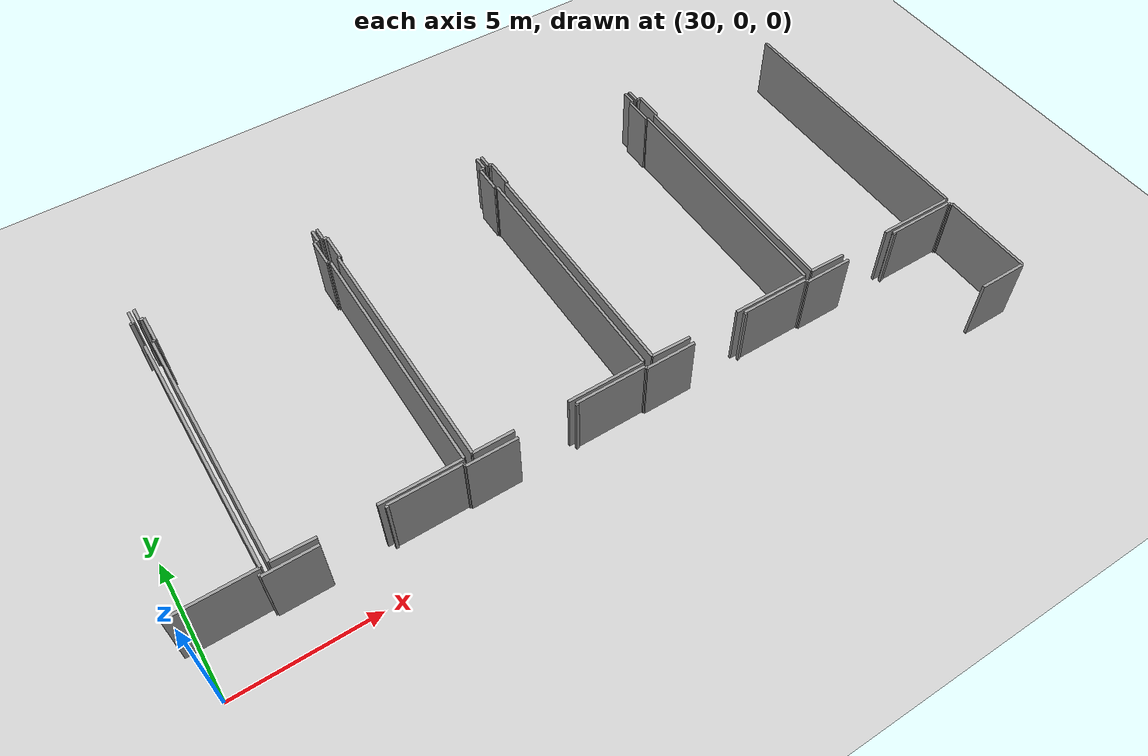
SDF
<sdf version="1.6">
 <world name="default">
  <model name="ground_plane">
   <static>1</static>
   <link name="link">
    <collision name="collision">
     <geometry><plane><normal>0 0 1</normal><size>100 100</size></plane></geometry>
     <surface><friction><ode><mu>100</mu><mu2>50</mu2></ode></friction></surface>
    </collision>
    <visual name="visual">
     <cast_shadows>0</cast_shadows>
     <geometry><plane><normal>0 0 1</normal><size>100 100</size></plane></geometry>
     <material>
      <script><uri>file://media/materials/scripts/gazebo.material</uri><name>Gazebo/Grey</name></script>
     </material>
    </visual>
   </link>
  </model>
  <model name="0510040942_A-40">
   <static>1</static>
   <link name="Wall_314">
    <collision name="Wall_314_Collision">
     <geometry><box><size>9.08522273114 0.1 2.5</size></box></geometry>
     <pose>4.54261136557 0 1.25 0 0 0</pose>
    </collision>
    <visual name="Wall_314_Visual">
     <pose>4.54261136557 0 1.25 0 0 0</pose>
     <geometry><box><size>9.08522273114 0.1 2.5</size></box></geometry>
     <material>
      <script><uri>file://media/materials/scripts/gazebo.material</uri><name>Gazebo/Grey</name></script>
      <ambient>1 1 1 1</ambient>
     </material>
    </visual>
    <pose>110.847659769 -10.6883032848 0 0 0 1.57079632679</pose>
   </link>
   <link name="Wall_315">
    <collision name="Wall_315_Collision">
     <geometry><box><size>0.0864026796249 0.1 2.5</size></box></geometry>
     <pose>0.0432013398125 0 1.25 0 0 0</pose>
    </collision>
    <visual name="Wall_315_Visual">
     <pose>0.0432013398125 0 1.25 0 0 0</pose>
     <geometry><box><size>0.0864026796249 0.1 2.5</size></box></geometry>
     <material>
      <script><uri>file://media/materials/scripts/gazebo.material</uri><name>Gazebo/Grey</name></script>
      <ambient>1 1 1 1</ambient>
     </material>
    </visual>
    <pose>110.847659769 -1.60308055369 0 0 0 0.0</pose>
   </link>
   <link name="Wall_316">
    <collision name="Wall_316_Collision">
     <geometry><box><size>1.06487179162 0.1 2.5</size></box></geometry>
     <pose>0.532435895809 0 1.25 0 0 0</pose>
    </collision>
    <visual name="Wall_316_Visual">
     <pose>0.532435895809 0 1.25 0 0 0</pose>
     <geometry><box><size>1.06487179162 0.1 2.5</size></box></geometry>
     <material>
      <script><uri>file://media/materials/scripts/gazebo.material</uri><name>Gazebo/Grey</name></script>
      <ambient>1 1 1 1</ambient>
     </material>
    </visual>
    <pose>110.934062448 -1.60308055369 0 0 0 1.57079632679</pose>
   </link>
   <link name="Wall_317">
    <collision name="Wall_317_Collision">
     <geometry><box><size>0.163162769453 0.1 2.5</size></box></geometry>
     <pose>0.0815813847266 0 1.25 0 0 0</pose>
    </collision>
    <visual name="Wall_317_Visual">
     <pose>0.0815813847266 0 1.25 0 0 0</pose>
     <geometry><box><size>0.163162769453 0.1 2.5</size></box></geometry>
     <material>
      <script><uri>file://media/materials/scripts/gazebo.material</uri><name>Gazebo/Grey</name></script>
      <ambient>1 1 1 1</ambient>
     </material>
    </visual>
    <pose>110.934062448 -0.538208762069 0 0 0 3.14159265359</pose>
   </link>
   <link name="Wall_318">
    <collision name="Wall_318_Collision">
     <geometry><box><size>0.518035449205 0.1 2.5</size></box></geometry>
     <pose>0.259017724603 0 1.25 0 0 0</pose>
    </collision>
    <visual name="Wall_318_Visual">
     <pose>0.259017724603 0 1.25 0 0 0</pose>
     <geometry><box><size>0.518035449205 0.1 2.5</size></box></geometry>
     <material>
      <script><uri>file://media/materials/scripts/gazebo.material</uri><name>Gazebo/Grey</name></script>
      <ambient>1 1 1 1</ambient>
     </material>
    </visual>
    <pose>110.770899679 -0.538208762069 0 0 0 1.57079632679</pose>
   </link>
   <link name="Wall_319">
    <collision name="Wall_319_Collision">
     <geometry><box><size>10.1485720086 0.1 2.5</size></box></geometry>
     <pose>5.07428600429 0 1.25 0 0 0</pose>
    </collision>
    <visual name="Wall_319_Visual">
     <pose>5.07428600429 0 1.25 0 0 0</pose>
     <geometry><box><size>10.1485720086 0.1 2.5</size></box></geometry>
     <material>
      <script><uri>file://media/materials/scripts/gazebo.material</uri><name>Gazebo/Grey</name></script>
      <ambient>1 1 1 1</ambient>
     </material>
    </visual>
    <pose>116.951926615 -0.56967405509 0 0 0 -1.57079632679</pose>
   </link>
   <link name="Wall_320">
    <collision name="Wall_320_Collision">
     <geometry><box><size>2.85090779908 0.1 2.5</size></box></geometry>
     <pose>1.42545389954 0 1.25 0 0 0</pose>
    </collision>
    <visual name="Wall_320_Visual">
     <pose>1.42545389954 0 1.25 0 0 0</pose>
     <geometry><box><size>2.85090779908 0.1 2.5</size></box></geometry>
     <material>
      <script><uri>file://media/materials/scripts/gazebo.material</uri><name>Gazebo/Grey</name></script>
      <ambient>1 1 1 1</ambient>
     </material>
    </visual>
    <pose>116.951926615 -10.7182460637 0 0 0 3.14159265359</pose>
   </link>
   <link name="Wall_321">
    <collision name="Wall_321_Collision">
     <geometry><box><size>1.34547449775 0.1 2.5</size></box></geometry>
     <pose>0.672737248875 0 1.25 0 0 0</pose>
    </collision>
    <visual name="Wall_321_Visual">
     <pose>0.672737248875 0 1.25 0 0 0</pose>
     <geometry><box><size>1.34547449775 0.1 2.5</size></box></geometry>
     <material>
      <script><uri>file://media/materials/scripts/gazebo.material</uri><name>Gazebo/Grey</name></script>
      <ambient>1 1 1 1</ambient>
     </material>
    </visual>
    <pose>112.192801045 -10.7182460637 0 0 0 3.11933637819</pose>
   </link>
   <link name="Wall_322">
    <collision name="Wall_322_Collision">
     <geometry><box><size>9.08281208369 0.1 2.5</size></box></geometry>
     <pose>4.54140604184 0 1.25 0 0 0</pose>
    </collision>
    <visual name="Wall_322_Visual">
     <pose>4.54140604184 0 1.25 0 0 0</pose>
     <geometry><box><size>9.08281208369 0.1 2.5</size></box></geometry>
     <material>
      <script><uri>file://media/materials/scripts/gazebo.material</uri><name>Gazebo/Grey</name></script>
      <ambient>1 1 1 1</ambient>
     </material>
    </visual>
    <pose>104.36834693 -10.6858926374 0 0 0 1.57079632679</pose>
   </link>
   <link name="Wall_323">
    <collision name="Wall_323_Collision">
     <geometry><box><size>0.0611543194996 0.1 2.5</size></box></geometry>
     <pose>0.0305771597498 0 1.25 0 0 0</pose>
    </collision>
    <visual name="Wall_323_Visual">
     <pose>0.0305771597498 0 1.25 0 0 0</pose>
     <geometry><box><size>0.0611543194996 0.1 2.5</size></box></geometry>
     <material>
      <script><uri>file://media/materials/scripts/gazebo.material</uri><name>Gazebo/Grey</name></script>
      <ambient>1 1 1 1</ambient>
     </material>
    </visual>
    <pose>104.36834693 -1.60308055369 0 0 0 0.0</pose>
   </link>
   <link name="Wall_324">
    <collision name="Wall_324_Collision">
     <geometry><box><size>1.07451438142 0.1 2.5</size></box></geometry>
     <pose>0.537257190708 0 1.25 0 0 0</pose>
    </collision>
    <visual name="Wall_324_Visual">
     <pose>0.537257190708 0 1.25 0 0 0</pose>
     <geometry><box><size>1.07451438142 0.1 2.5</size></box></geometry>
     <material>
      <script><uri>file://media/materials/scripts/gazebo.material</uri><name>Gazebo/Grey</name></script>
      <ambient>1 1 1 1</ambient>
     </material>
    </visual>
    <pose>104.42950125 -1.60308055369 0 0 0 1.57079632679</pose>
   </link>
   <link name="Wall_325">
    <collision name="Wall_325_Collision">
     <geometry><box><size>0.134235000063 0.1 2.5</size></box></geometry>
     <pose>0.0671175000317 0 1.25 0 0 0</pose>
    </collision>
    <visual name="Wall_325_Visual">
     <pose>0.0671175000317 0 1.25 0 0 0</pose>
     <geometry><box><size>0.134235000063 0.1 2.5</size></box></geometry>
     <material>
      <script><uri>file://media/materials/scripts/gazebo.material</uri><name>Gazebo/Grey</name></script>
      <ambient>1 1 1 1</ambient>
     </material>
    </visual>
    <pose>104.42950125 -0.528566172272 0 0 0 3.14159265359</pose>
   </link>
   <link name="Wall_326">
    <collision name="Wall_326_Collision">
     <geometry><box><size>0.518035449205 0.1 2.5</size></box></geometry>
     <pose>0.259017724603 0 1.25 0 0 0</pose>
    </collision>
    <visual name="Wall_326_Visual">
     <pose>0.259017724603 0 1.25 0 0 0</pose>
     <geometry><box><size>0.518035449205 0.1 2.5</size></box></geometry>
     <material>
      <script><uri>file://media/materials/scripts/gazebo.material</uri><name>Gazebo/Grey</name></script>
      <ambient>1 1 1 1</ambient>
     </material>
    </visual>
    <pose>104.29526625 -0.528566172272 0 0 0 1.57079632679</pose>
   </link>
   <link name="Wall_327">
    <collision name="Wall_327_Collision">
     <geometry><box><size>0.525648020097 0.1 2.5</size></box></geometry>
     <pose>0.262824010049 0 1.25 0 0 0</pose>
    </collision>
    <visual name="Wall_327_Visual">
     <pose>0.262824010049 0 1.25 0 0 0</pose>
     <geometry><box><size>0.525648020097 0.1 2.5</size></box></geometry>
     <material>
      <script><uri>file://media/materials/scripts/gazebo.material</uri><name>Gazebo/Grey</name></script>
      <ambient>1 1 1 1</ambient>
     </material>
    </visual>
    <pose>110.596318053 -0.0105307230674 0 0 0 -1.57079632679</pose>
   </link>
   <link name="Wall_328">
    <collision name="Wall_328_Collision">
     <geometry><box><size>0.126114924445 0.1 2.5</size></box></geometry>
     <pose>0.0630574622226 0 1.25 0 0 0</pose>
    </collision>
    <visual name="Wall_328_Visual">
     <pose>0.0630574622226 0 1.25 0 0 0</pose>
     <geometry><box><size>0.126114924445 0.1 2.5</size></box></geometry>
     <material>
      <script><uri>file://media/materials/scripts/gazebo.material</uri><name>Gazebo/Grey</name></script>
      <ambient>1 1 1 1</ambient>
     </material>
    </visual>
    <pose>110.596318053 -0.536178743165 0 0 0 3.14159265359</pose>
   </link>
   <link name="Wall_329">
    <collision name="Wall_329_Collision">
     <geometry><box><size>1.06563304871 0.1 2.5</size></box></geometry>
     <pose>0.532816524354 0 1.25 0 0 0</pose>
    </collision>
    <visual name="Wall_329_Visual">
     <pose>0.532816524354 0 1.25 0 0 0</pose>
     <geometry><box><size>1.06563304871 0.1 2.5</size></box></geometry>
     <material>
      <script><uri>file://media/materials/scripts/gazebo.material</uri><name>Gazebo/Grey</name></script>
      <ambient>1 1 1 1</ambient>
     </material>
    </visual>
    <pose>110.470203129 -0.536178743165 0 0 0 -1.57079632679</pose>
   </link>
   <link name="Wall_330">
    <collision name="Wall_330_Collision">
     <geometry><box><size>0.0548105104229 0.1 2.5</size></box></geometry>
     <pose>0.0274052552114 0 1.25 0 0 0</pose>
    </collision>
    <visual name="Wall_330_Visual">
     <pose>0.0274052552114 0 1.25 0 0 0</pose>
     <geometry><box><size>0.0548105104229 0.1 2.5</size></box></geometry>
     <material>
      <script><uri>file://media/materials/scripts/gazebo.material</uri><name>Gazebo/Grey</name></script>
      <ambient>1 1 1 1</ambient>
     </material>
    </visual>
    <pose>110.470203129 -1.60181179187 0 0 0 0.0</pose>
   </link>
   <link name="Wall_331">
    <collision name="Wall_331_Collision">
     <geometry><box><size>9.11643427179 0.1 2.5</size></box></geometry>
     <pose>4.5582171359 0 1.25 0 0 0</pose>
    </collision>
    <visual name="Wall_331_Visual">
     <pose>4.5582171359 0 1.25 0 0 0</pose>
     <geometry><box><size>9.11643427179 0.1 2.5</size></box></geometry>
     <material>
      <script><uri>file://media/materials/scripts/gazebo.material</uri><name>Gazebo/Grey</name></script>
      <ambient>1 1 1 1</ambient>
     </material>
    </visual>
    <pose>110.525013639 -1.60181179187 0 0 0 -1.57079632679</pose>
   </link>
   <link name="Wall_332">
    <collision name="Wall_332_Collision">
     <geometry><box><size>2.84392960909 0.1 2.5</size></box></geometry>
     <pose>1.42196480455 0 1.25 0 0 0</pose>
    </collision>
    <visual name="Wall_332_Visual">
     <pose>1.42196480455 0 1.25 0 0 0</pose>
     <geometry><box><size>2.84392960909 0.1 2.5</size></box></geometry>
     <material>
      <script><uri>file://media/materials/scripts/gazebo.material</uri><name>Gazebo/Grey</name></script>
      <ambient>1 1 1 1</ambient>
     </material>
    </visual>
    <pose>110.525013639 -10.7182460637 0 0 0 3.14159265359</pose>
   </link>
   <link name="Wall_333">
    <collision name="Wall_333_Collision">
     <geometry><box><size>1.43343163523 0.1 2.5</size></box></geometry>
     <pose>0.716715817613 0 1.25 0 0 0</pose>
    </collision>
    <visual name="Wall_333_Visual">
     <pose>0.716715817613 0 1.25 0 0 0</pose>
     <geometry><box><size>1.43343163523 0.1 2.5</size></box></geometry>
     <material>
      <script><uri>file://media/materials/scripts/gazebo.material</uri><name>Gazebo/Grey</name></script>
      <ambient>1 1 1 1</ambient>
     </material>
    </visual>
    <pose>105.801413401 -10.7182460637 0 0 0 3.11902012686</pose>
   </link>
   <link name="Wall_334">
    <collision name="Wall_334_Collision">
     <geometry><box><size>1.44626159331 0.1 2.5</size></box></geometry>
     <pose>0.723130796656 0 1.25 0 0 0</pose>
    </collision>
    <visual name="Wall_334_Visual">
     <pose>0.723130796656 0 1.25 0 0 0</pose>
     <geometry><box><size>1.44626159331 0.1 2.5</size></box></geometry>
     <material>
      <script><uri>file://media/materials/scripts/gazebo.material</uri><name>Gazebo/Grey</name></script>
      <ambient>1 1 1 1</ambient>
     </material>
    </visual>
    <pose>97.8512249895 -10.6992146364 0 0 0 0.0</pose>
   </link>
   <link name="Wall_335">
    <collision name="Wall_335_Collision">
     <geometry><box><size>2.8012992121 0.1 2.5</size></box></geometry>
     <pose>1.40064960605 0 1.25 0 0 0</pose>
    </collision>
    <visual name="Wall_335_Visual">
     <pose>1.40064960605 0 1.25 0 0 0</pose>
     <geometry><box><size>2.8012992121 0.1 2.5</size></box></geometry>
     <material>
      <script><uri>file://media/materials/scripts/gazebo.material</uri><name>Gazebo/Grey</name></script>
      <ambient>1 1 1 1</ambient>
     </material>
    </visual>
    <pose>101.217250086 -10.6992146364 0 0 0 0.0</pose>
   </link>
   <link name="Wall_336">
    <collision name="Wall_336_Collision">
     <geometry><box><size>9.064161285 0.1 2.5</size></box></geometry>
     <pose>4.5320806425 0 1.25 0 0 0</pose>
    </collision>
    <visual name="Wall_336_Visual">
     <pose>4.5320806425 0 1.25 0 0 0</pose>
     <geometry><box><size>9.064161285 0.1 2.5</size></box></geometry>
     <material>
      <script><uri>file://media/materials/scripts/gazebo.material</uri><name>Gazebo/Grey</name></script>
      <ambient>1 1 1 1</ambient>
     </material>
    </visual>
    <pose>104.018549298 -10.6992146364 0 0 0 1.57079632679</pose>
   </link>
   <link name="Wall_337">
    <collision name="Wall_337_Collision">
     <geometry><box><size>0.0799319943667 0.1 2.5</size></box></geometry>
     <pose>0.0399659971834 0 1.25 0 0 0</pose>
    </collision>
    <visual name="Wall_337_Visual">
     <pose>0.0399659971834 0 1.25 0 0 0</pose>
     <geometry><box><size>0.0799319943667 0.1 2.5</size></box></geometry>
     <material>
      <script><uri>file://media/materials/scripts/gazebo.material</uri><name>Gazebo/Grey</name></script>
      <ambient>1 1 1 1</ambient>
     </material>
    </visual>
    <pose>104.018549298 -1.63505335143 0 0 0 3.14159265359</pose>
   </link>
   <link name="Wall_338">
    <collision name="Wall_338_Collision">
     <geometry><box><size>1.07844754304 0.1 2.5</size></box></geometry>
     <pose>0.539223771521 0 1.25 0 0 0</pose>
    </collision>
    <visual name="Wall_338_Visual">
     <pose>0.539223771521 0 1.25 0 0 0</pose>
     <geometry><box><size>1.07844754304 0.1 2.5</size></box></geometry>
     <material>
      <script><uri>file://media/materials/scripts/gazebo.material</uri><name>Gazebo/Grey</name></script>
      <ambient>1 1 1 1</ambient>
     </material>
    </visual>
    <pose>103.938617303 -1.63505335143 0 0 0 1.57079632679</pose>
   </link>
   <link name="Wall_339">
    <collision name="Wall_339_Collision">
     <geometry><box><size>0.178387911237 0.1 2.5</size></box></geometry>
     <pose>0.0891939556187 0 1.25 0 0 0</pose>
    </collision>
    <visual name="Wall_339_Visual">
     <pose>0.0891939556187 0 1.25 0 0 0</pose>
     <geometry><box><size>0.178387911237 0.1 2.5</size></box></geometry>
     <material>
      <script><uri>file://media/materials/scripts/gazebo.material</uri><name>Gazebo/Grey</name></script>
      <ambient>1 1 1 1</ambient>
     </material>
    </visual>
    <pose>103.938617303 -0.556605808392 0 0 0 0.0</pose>
   </link>
   <link name="Wall_340">
    <collision name="Wall_340_Collision">
     <geometry><box><size>0.54328380933 0.1 2.5</size></box></geometry>
     <pose>0.271641904665 0 1.25 0 0 0</pose>
    </collision>
    <visual name="Wall_340_Visual">
     <pose>0.271641904665 0 1.25 0 0 0</pose>
     <geometry><box><size>0.54328380933 0.1 2.5</size></box></geometry>
     <material>
      <script><uri>file://media/materials/scripts/gazebo.material</uri><name>Gazebo/Grey</name></script>
      <ambient>1 1 1 1</ambient>
     </material>
    </visual>
    <pose>104.117005215 -0.556605808392 0 0 0 1.57079632679</pose>
   </link>
   <link name="Wall_341">
    <collision name="Wall_341_Collision">
     <geometry><box><size>0.52171485847 0.1 2.5</size></box></geometry>
     <pose>0.260857429235 0 1.25 0 0 0</pose>
    </collision>
    <visual name="Wall_341_Visual">
     <pose>0.260857429235 0 1.25 0 0 0</pose>
     <geometry><box><size>0.52171485847 0.1 2.5</size></box></geometry>
     <material>
      <script><uri>file://media/materials/scripts/gazebo.material</uri><name>Gazebo/Grey</name></script>
      <ambient>1 1 1 1</ambient>
     </material>
    </visual>
    <pose>97.7907050509 -0.0133219990611 0 0 0 -1.57079632679</pose>
   </link>
   <link name="Wall_342">
    <collision name="Wall_342_Collision">
     <geometry><box><size>0.137533780783 0.1 2.5</size></box></geometry>
     <pose>0.0687668903917 0 1.25 0 0 0</pose>
    </collision>
    <visual name="Wall_342_Visual">
     <pose>0.0687668903917 0 1.25 0 0 0</pose>
     <geometry><box><size>0.137533780783 0.1 2.5</size></box></geometry>
     <material>
      <script><uri>file://media/materials/scripts/gazebo.material</uri><name>Gazebo/Grey</name></script>
      <ambient>1 1 1 1</ambient>
     </material>
    </visual>
    <pose>97.7907050509 -0.535036857531 0 0 0 0.0</pose>
   </link>
   <link name="Wall_343">
    <collision name="Wall_343_Collision">
     <geometry><box><size>1.04837788802 0.1 2.5</size></box></geometry>
     <pose>0.52418894401 0 1.25 0 0 0</pose>
    </collision>
    <visual name="Wall_343_Visual">
     <pose>0.52418894401 0 1.25 0 0 0</pose>
     <geometry><box><size>1.04837788802 0.1 2.5</size></box></geometry>
     <material>
      <script><uri>file://media/materials/scripts/gazebo.material</uri><name>Gazebo/Grey</name></script>
      <ambient>1 1 1 1</ambient>
     </material>
    </visual>
    <pose>97.9282388317 -0.535036857531 0 0 0 -1.57079632679</pose>
   </link>
   <link name="Wall_344">
    <collision name="Wall_344_Collision">
     <geometry><box><size>0.0798051181851 0.1 2.5</size></box></geometry>
     <pose>0.0399025590926 0 1.25 0 0 0</pose>
    </collision>
    <visual name="Wall_344_Visual">
     <pose>0.0399025590926 0 1.25 0 0 0</pose>
     <geometry><box><size>0.0798051181851 0.1 2.5</size></box></geometry>
     <material>
      <script><uri>file://media/materials/scripts/gazebo.material</uri><name>Gazebo/Grey</name></script>
      <ambient>1 1 1 1</ambient>
     </material>
    </visual>
    <pose>97.9282388317 -1.58341474555 0 0 0 3.14159265359</pose>
   </link>
   <link name="Wall_345">
    <collision name="Wall_345_Collision">
     <geometry><box><size>9.10120913001 0.1 2.5</size></box></geometry>
     <pose>4.55060456501 0 1.25 0 0 0</pose>
    </collision>
    <visual name="Wall_345_Visual">
     <pose>4.55060456501 0 1.25 0 0 0</pose>
     <geometry><box><size>9.10120913001 0.1 2.5</size></box></geometry>
     <material>
      <script><uri>file://media/materials/scripts/gazebo.material</uri><name>Gazebo/Grey</name></script>
      <ambient>1 1 1 1</ambient>
     </material>
    </visual>
    <pose>97.8484337135 -1.58341474555 0 0 0 -1.57079632679</pose>
   </link>
   <link name="Wall_346">
    <collision name="Wall_346_Collision">
     <geometry><box><size>0.0148553533996 0.1 2.5</size></box></geometry>
     <pose>0.0074276766998 0 1.25 0 0 0</pose>
    </collision>
    <visual name="Wall_346_Visual">
     <pose>0.0074276766998 0 1.25 0 0 0</pose>
     <geometry><box><size>0.0148553533996 0.1 2.5</size></box></geometry>
     <material>
      <script><uri>file://media/materials/scripts/gazebo.material</uri><name>Gazebo/Grey</name></script>
      <ambient>1 1 1 1</ambient>
     </material>
    </visual>
    <pose>97.8484337135 -10.6846238756 0 0 0 -1.38177578051</pose>
   </link>
   <link name="Wall_347">
    <collision name="Wall_347_Collision">
     <geometry><box><size>9.10438103455 0.1 2.5</size></box></geometry>
     <pose>4.55219051727 0 1.25 0 0 0</pose>
    </collision>
    <visual name="Wall_347_Visual">
     <pose>4.55219051727 0 1.25 0 0 0</pose>
     <geometry><box><size>9.10438103455 0.1 2.5</size></box></geometry>
     <material>
      <script><uri>file://media/materials/scripts/gazebo.material</uri><name>Gazebo/Grey</name></script>
      <ambient>1 1 1 1</ambient>
     </material>
    </visual>
    <pose>91.3533882284 -10.6883032848 0 0 0 1.57079632679</pose>
   </link>
   <link name="Wall_348">
    <collision name="Wall_348_Collision">
     <geometry><box><size>0.105560983037 0.1 2.5</size></box></geometry>
     <pose>0.0527804915183 0 1.25 0 0 0</pose>
    </collision>
    <visual name="Wall_348_Visual">
     <pose>0.0527804915183 0 1.25 0 0 0</pose>
     <geometry><box><size>0.105560983037 0.1 2.5</size></box></geometry>
     <material>
      <script><uri>file://media/materials/scripts/gazebo.material</uri><name>Gazebo/Grey</name></script>
      <ambient>1 1 1 1</ambient>
     </material>
    </visual>
    <pose>91.3533882284 -1.58392225028 0 0 0 0.0</pose>
   </link>
   <link name="Wall_349">
    <collision name="Wall_349_Collision">
     <geometry><box><size>1.07451438142 0.1 2.5</size></box></geometry>
     <pose>0.537257190708 0 1.25 0 0 0</pose>
    </collision>
    <visual name="Wall_349_Visual">
     <pose>0.537257190708 0 1.25 0 0 0</pose>
     <geometry><box><size>1.07451438142 0.1 2.5</size></box></geometry>
     <material>
      <script><uri>file://media/materials/scripts/gazebo.material</uri><name>Gazebo/Grey</name></script>
      <ambient>1 1 1 1</ambient>
     </material>
    </visual>
    <pose>91.4589492115 -1.58392225028 0 0 0 1.57079632679</pose>
   </link>
   <link name="Wall_350">
    <collision name="Wall_350_Collision">
     <geometry><box><size>0.153520179657 0.1 2.5</size></box></geometry>
     <pose>0.0767600898283 0 1.25 0 0 0</pose>
    </collision>
    <visual name="Wall_350_Visual">
     <pose>0.0767600898283 0 1.25 0 0 0</pose>
     <geometry><box><size>0.153520179657 0.1 2.5</size></box></geometry>
     <material>
      <script><uri>file://media/materials/scripts/gazebo.material</uri><name>Gazebo/Grey</name></script>
      <ambient>1 1 1 1</ambient>
     </material>
    </visual>
    <pose>91.4589492115 -0.509407868861 0 0 0 3.14159265359</pose>
   </link>
   <link name="Wall_351">
    <collision name="Wall_351_Collision">
     <geometry><box><size>0.509407868861 0.1 2.5</size></box></geometry>
     <pose>0.25470393443 0 1.25 0 0 0</pose>
    </collision>
    <visual name="Wall_351_Visual">
     <pose>0.25470393443 0 1.25 0 0 0</pose>
     <geometry><box><size>0.509407868861 0.1 2.5</size></box></geometry>
     <material>
      <script><uri>file://media/materials/scripts/gazebo.material</uri><name>Gazebo/Grey</name></script>
      <ambient>1 1 1 1</ambient>
     </material>
    </visual>
    <pose>91.3054290318 -0.509407868861 0 0 0 1.57079632679</pose>
   </link>
   <link name="Wall_352">
    <collision name="Wall_352_Collision">
     <geometry><box><size>0.526155524823 0.1 2.5</size></box></geometry>
     <pose>0.263077762412 0 1.25 0 0 0</pose>
    </collision>
    <visual name="Wall_352_Visual">
     <pose>0.263077762412 0 1.25 0 0 0</pose>
     <geometry><box><size>0.526155524823 0.1 2.5</size></box></geometry>
     <material>
      <script><uri>file://media/materials/scripts/gazebo.material</uri><name>Gazebo/Grey</name></script>
      <ambient>1 1 1 1</ambient>
     </material>
    </visual>
    <pose>97.6267810244 -0.0 0 0 0 -1.57079632679</pose>
   </link>
   <link name="Wall_353">
    <collision name="Wall_353_Collision">
     <geometry><box><size>0.166842178718 0.1 2.5</size></box></geometry>
     <pose>0.0834210893589 0 1.25 0 0 0</pose>
    </collision>
    <visual name="Wall_353_Visual">
     <pose>0.0834210893589 0 1.25 0 0 0</pose>
     <geometry><box><size>0.166842178718 0.1 2.5</size></box></geometry>
     <material>
      <script><uri>file://media/materials/scripts/gazebo.material</uri><name>Gazebo/Grey</name></script>
      <ambient>1 1 1 1</ambient>
     </material>
    </visual>
    <pose>97.6267810244 -0.526155524823 0 0 0 3.14159265359</pose>
   </link>
   <link name="Wall_354">
    <collision name="Wall_354_Collision">
     <geometry><box><size>1.07096184833 0.1 2.5</size></box></geometry>
     <pose>0.535480924166 0 1.25 0 0 0</pose>
    </collision>
    <visual name="Wall_354_Visual">
     <pose>0.535480924166 0 1.25 0 0 0</pose>
     <geometry><box><size>1.07096184833 0.1 2.5</size></box></geometry>
     <material>
      <script><uri>file://media/materials/scripts/gazebo.material</uri><name>Gazebo/Grey</name></script>
      <ambient>1 1 1 1</ambient>
     </material>
    </visual>
    <pose>97.4599388457 -0.526155524823 0 0 0 -1.57079632679</pose>
   </link>
   <link name="Wall_355">
    <collision name="Wall_355_Collision">
     <geometry><box><size>0.0950302599693 0.1 2.5</size></box></geometry>
     <pose>0.0475151299846 0 1.25 0 0 0</pose>
    </collision>
    <visual name="Wall_355_Visual">
     <pose>0.0475151299846 0 1.25 0 0 0</pose>
     <geometry><box><size>0.0950302599693 0.1 2.5</size></box></geometry>
     <material>
      <script><uri>file://media/materials/scripts/gazebo.material</uri><name>Gazebo/Grey</name></script>
      <ambient>1 1 1 1</ambient>
     </material>
    </visual>
    <pose>97.4599388457 -1.59711737316 0 0 0 0.0</pose>
   </link>
   <link name="Wall_356">
    <collision name="Wall_356_Collision">
     <geometry><box><size>9.12645749014 0.1 2.5</size></box></geometry>
     <pose>4.56322874507 0 1.25 0 0 0</pose>
    </collision>
    <visual name="Wall_356_Visual">
     <pose>4.56322874507 0 1.25 0 0 0</pose>
     <geometry><box><size>9.12645749014 0.1 2.5</size></box></geometry>
     <material>
      <script><uri>file://media/materials/scripts/gazebo.material</uri><name>Gazebo/Grey</name></script>
      <ambient>1 1 1 1</ambient>
     </material>
    </visual>
    <pose>97.5549691056 -1.59711737316 0 0 0 -1.57079632679</pose>
   </link>
   <link name="Wall_357">
    <collision name="Wall_357_Collision">
     <geometry><box><size>2.86740170268 0.1 2.5</size></box></geometry>
     <pose>1.43370085134 0 1.25 0 0 0</pose>
    </collision>
    <visual name="Wall_357_Visual">
     <pose>1.43370085134 0 1.25 0 0 0</pose>
     <geometry><box><size>2.86740170268 0.1 2.5</size></box></geometry>
     <material>
      <script><uri>file://media/materials/scripts/gazebo.material</uri><name>Gazebo/Grey</name></script>
      <ambient>1 1 1 1</ambient>
     </material>
    </visual>
    <pose>97.5549691056 -10.7235748633 0 0 0 3.14159265359</pose>
   </link>
   <link name="Wall_358">
    <collision name="Wall_358_Collision">
     <geometry><box><size>1.45785344332 0.1 2.5</size></box></geometry>
     <pose>0.728926721662 0 1.25 0 0 0</pose>
    </collision>
    <visual name="Wall_358_Visual">
     <pose>0.728926721662 0 1.25 0 0 0</pose>
     <geometry><box><size>1.45785344332 0.1 2.5</size></box></geometry>
     <material>
      <script><uri>file://media/materials/scripts/gazebo.material</uri><name>Gazebo/Grey</name></script>
      <ambient>1 1 1 1</ambient>
     </material>
    </visual>
    <pose>92.8108149257 -10.7235748633 0 0 0 3.11739610584</pose>
   </link>
   <link name="Wall_363">
    <collision name="Wall_363_Collision">
     <geometry><box><size>0.512706649581 0.1 2.5</size></box></geometry>
     <pose>0.25635332479 0 1.25 0 0 0</pose>
    </collision>
    <visual name="Wall_363_Visual">
     <pose>0.25635332479 0 1.25 0 0 0</pose>
     <geometry><box><size>0.512706649581 0.1 2.5</size></box></geometry>
     <material>
      <script><uri>file://media/materials/scripts/gazebo.material</uri><name>Gazebo/Grey</name></script>
      <ambient>1 1 1 1</ambient>
     </material>
    </visual>
    <pose>91.119682302 -0.00634380907672 0 0 0 -1.57079632679</pose>
   </link>
   <link name="Wall_364">
    <collision name="Wall_364_Collision">
     <geometry><box><size>0.138295037873 0.1 2.5</size></box></geometry>
     <pose>0.0691475189363 0 1.25 0 0 0</pose>
    </collision>
    <visual name="Wall_364_Visual">
     <pose>0.0691475189363 0 1.25 0 0 0</pose>
     <geometry><box><size>0.138295037873 0.1 2.5</size></box></geometry>
     <material>
      <script><uri>file://media/materials/scripts/gazebo.material</uri><name>Gazebo/Grey</name></script>
      <ambient>1 1 1 1</ambient>
     </material>
    </visual>
    <pose>91.119682302 -0.519050458657 0 0 0 3.14159265359</pose>
   </link>
   <link name="Wall_367">
    <collision name="Wall_367_Collision">
     <geometry><box><size>9.1156730147 0.1 2.5</size></box></geometry>
     <pose>4.55783650735 0 1.25 0 0 0</pose>
    </collision>
    <visual name="Wall_367_Visual">
     <pose>4.55783650735 0 1.25 0 0 0</pose>
     <geometry><box><size>9.1156730147 0.1 2.5</size></box></geometry>
     <material>
      <script><uri>file://media/materials/scripts/gazebo.material</uri><name>Gazebo/Grey</name></script>
      <ambient>1 1 1 1</ambient>
     </material>
    </visual>
    <pose>91.0934189325 -1.60257304896 0 0 0 -1.57079632679</pose>
   </link>
   <link name="Wall_368">
    <collision name="Wall_368_Collision">
     <geometry><box><size>2.88973191063 0.1 2.5</size></box></geometry>
     <pose>1.44486595531 0 1.25 0 0 0</pose>
    </collision>
    <visual name="Wall_368_Visual">
     <pose>1.44486595531 0 1.25 0 0 0</pose>
     <geometry><box><size>2.88973191063 0.1 2.5</size></box></geometry>
     <material>
      <script><uri>file://media/materials/scripts/gazebo.material</uri><name>Gazebo/Grey</name></script>
      <ambient>1 1 1 1</ambient>
     </material>
    </visual>
    <pose>91.0934189325 -10.7182460637 0 0 0 3.14159265359</pose>
   </link>
   <link name="Wall_440">
    <collision name="Wall_440_Collision">
     <geometry><box><size>0.095664640877 0.1 2.5</size></box></geometry>
     <pose>0.0478323204385 0 1.25 0 0 0</pose>
    </collision>
    <visual name="Wall_440_Visual">
     <pose>0.0478323204385 0 1.25 0 0 0</pose>
     <geometry><box><size>0.095664640877 0.1 2.5</size></box></geometry>
     <material>
      <script><uri>file://media/materials/scripts/gazebo.material</uri><name>Gazebo/Grey</name></script>
      <ambient>1 1 1 1</ambient>
     </material>
    </visual>
    <pose>90.9848129211 -10.8830582235 0 0 0 -1.57079632679</pose>
   </link>
   <link name="Wall_441">
    <collision name="Wall_441_Collision">
     <geometry><box><size>1.79517109253 0.1 2.5</size></box></geometry>
     <pose>0.897585546265 0 1.25 0 0 0</pose>
    </collision>
    <visual name="Wall_441_Visual">
     <pose>0.897585546265 0 1.25 0 0 0</pose>
     <geometry><box><size>1.79517109253 0.1 2.5</size></box></geometry>
     <material>
      <script><uri>file://media/materials/scripts/gazebo.material</uri><name>Gazebo/Grey</name></script>
      <ambient>1 1 1 1</ambient>
     </material>
    </visual>
    <pose>90.9848129211 -10.9787228644 0 0 0 0.0</pose>
   </link>
   <link name="Wall_442">
    <collision name="Wall_442_Collision">
     <geometry><box><size>0.104545973584 0.1 2.5</size></box></geometry>
     <pose>0.0522729867922 0 1.25 0 0 0</pose>
    </collision>
    <visual name="Wall_442_Visual">
     <pose>0.0522729867922 0 1.25 0 0 0</pose>
     <geometry><box><size>0.104545973584 0.1 2.5</size></box></geometry>
     <material>
      <script><uri>file://media/materials/scripts/gazebo.material</uri><name>Gazebo/Grey</name></script>
      <ambient>1 1 1 1</ambient>
     </material>
    </visual>
    <pose>94.9021150259 -10.9787228644 0 0 0 1.57079632679</pose>
   </link>
   <link name="Wall_443">
    <collision name="Wall_443_Collision">
     <geometry><box><size>2.56023446718 0.1 2.5</size></box></geometry>
     <pose>1.28011723359 0 1.25 0 0 0</pose>
    </collision>
    <visual name="Wall_443_Visual">
     <pose>1.28011723359 0 1.25 0 0 0</pose>
     <geometry><box><size>2.56023446718 0.1 2.5</size></box></geometry>
     <material>
      <script><uri>file://media/materials/scripts/gazebo.material</uri><name>Gazebo/Grey</name></script>
      <ambient>1 1 1 1</ambient>
     </material>
    </visual>
    <pose>94.9021150259 -10.8741768908 0 0 0 0.0</pose>
   </link>
   <link name="Wall_444">
    <collision name="Wall_444_Collision">
     <geometry><box><size>0.104419097403 0.1 2.5</size></box></geometry>
     <pose>0.0522095487014 0 1.25 0 0 0</pose>
    </collision>
    <visual name="Wall_444_Visual">
     <pose>0.0522095487014 0 1.25 0 0 0</pose>
     <geometry><box><size>0.104419097403 0.1 2.5</size></box></geometry>
     <material>
      <script><uri>file://media/materials/scripts/gazebo.material</uri><name>Gazebo/Grey</name></script>
      <ambient>1 1 1 1</ambient>
     </material>
    </visual>
    <pose>97.4623494931 -10.8741768908 0 0 0 -1.57079632679</pose>
   </link>
   <link name="Wall_445">
    <collision name="Wall_445_Collision">
     <geometry><box><size>1.80950810104 0.1 2.5</size></box></geometry>
     <pose>0.904754050522 0 1.25 0 0 0</pose>
    </collision>
    <visual name="Wall_445_Visual">
     <pose>0.904754050522 0 1.25 0 0 0</pose>
     <geometry><box><size>1.80950810104 0.1 2.5</size></box></geometry>
     <material>
      <script><uri>file://media/materials/scripts/gazebo.material</uri><name>Gazebo/Grey</name></script>
      <ambient>1 1 1 1</ambient>
     </material>
    </visual>
    <pose>97.4623494931 -10.9785959882 0 0 0 0.0</pose>
   </link>
   <link name="Wall_446">
    <collision name="Wall_446_Collision">
     <geometry><box><size>0.0995978025045 0.1 2.5</size></box></geometry>
     <pose>0.0497989012523 0 1.25 0 0 0</pose>
    </collision>
    <visual name="Wall_446_Visual">
     <pose>0.0497989012523 0 1.25 0 0 0</pose>
     <geometry><box><size>0.0995978025045 0.1 2.5</size></box></geometry>
     <material>
      <script><uri>file://media/materials/scripts/gazebo.material</uri><name>Gazebo/Grey</name></script>
      <ambient>1 1 1 1</ambient>
     </material>
    </visual>
    <pose>101.388913559 -10.9785959882 0 0 0 1.57079632679</pose>
   </link>
   <link name="Wall_447">
    <collision name="Wall_447_Collision">
     <geometry><box><size>2.5663245239 0.1 2.5</size></box></geometry>
     <pose>1.28316226195 0 1.25 0 0 0</pose>
    </collision>
    <visual name="Wall_447_Visual">
     <pose>1.28316226195 0 1.25 0 0 0</pose>
     <geometry><box><size>2.5663245239 0.1 2.5</size></box></geometry>
     <material>
      <script><uri>file://media/materials/scripts/gazebo.material</uri><name>Gazebo/Grey</name></script>
      <ambient>1 1 1 1</ambient>
     </material>
    </visual>
    <pose>101.388913559 -10.8789981857 0 0 0 0.0</pose>
   </link>
   <link name="Wall_448">
    <collision name="Wall_448_Collision">
     <geometry><box><size>0.100612811957 0.1 2.5</size></box></geometry>
     <pose>0.0503064059784 0 1.25 0 0 0</pose>
    </collision>
    <visual name="Wall_448_Visual">
     <pose>0.0503064059784 0 1.25 0 0 0</pose>
     <geometry><box><size>0.100612811957 0.1 2.5</size></box></geometry>
     <material>
      <script><uri>file://media/materials/scripts/gazebo.material</uri><name>Gazebo/Grey</name></script>
      <ambient>1 1 1 1</ambient>
     </material>
    </visual>
    <pose>103.955238083 -10.8789981857 0 0 0 -1.57079632679</pose>
   </link>
   <link name="Wall_449">
    <collision name="Wall_449_Collision">
     <geometry><box><size>1.83412208026 0.1 2.5</size></box></geometry>
     <pose>0.917061040131 0 1.25 0 0 0</pose>
    </collision>
    <visual name="Wall_449_Visual">
     <pose>0.917061040131 0 1.25 0 0 0</pose>
     <geometry><box><size>1.83412208026 0.1 2.5</size></box></geometry>
     <material>
      <script><uri>file://media/materials/scripts/gazebo.material</uri><name>Gazebo/Grey</name></script>
      <ambient>1 1 1 1</ambient>
     </material>
    </visual>
    <pose>103.955238083 -10.9796109976 0 0 0 0.0</pose>
   </link>
   <link name="Wall_450">
    <collision name="Wall_450_Collision">
     <geometry><box><size>0.105434106855 0.1 2.5</size></box></geometry>
     <pose>0.0527170534276 0 1.25 0 0 0</pose>
    </collision>
    <visual name="Wall_450_Visual">
     <pose>0.0527170534276 0 1.25 0 0 0</pose>
     <geometry><box><size>0.105434106855 0.1 2.5</size></box></geometry>
     <material>
      <script><uri>file://media/materials/scripts/gazebo.material</uri><name>Gazebo/Grey</name></script>
      <ambient>1 1 1 1</ambient>
     </material>
    </visual>
    <pose>107.880533387 -10.9796109976 0 0 0 1.57079632679</pose>
   </link>
   <link name="Wall_451">
    <collision name="Wall_451_Collision">
     <geometry><box><size>2.55972696246 0.1 2.5</size></box></geometry>
     <pose>1.27986348123 0 1.25 0 0 0</pose>
    </collision>
    <visual name="Wall_451_Visual">
     <pose>1.27986348123 0 1.25 0 0 0</pose>
     <geometry><box><size>2.55972696246 0.1 2.5</size></box></geometry>
     <material>
      <script><uri>file://media/materials/scripts/gazebo.material</uri><name>Gazebo/Grey</name></script>
      <ambient>1 1 1 1</ambient>
     </material>
    </visual>
    <pose>107.880533387 -10.8741768908 0 0 0 0.0</pose>
   </link>
   <link name="Wall_452">
    <collision name="Wall_452_Collision">
     <geometry><box><size>0.111524163569 0.1 2.5</size></box></geometry>
     <pose>0.0557620817844 0 1.25 0 0 0</pose>
    </collision>
    <visual name="Wall_452_Visual">
     <pose>0.0557620817844 0 1.25 0 0 0</pose>
     <geometry><box><size>0.111524163569 0.1 2.5</size></box></geometry>
     <material>
      <script><uri>file://media/materials/scripts/gazebo.material</uri><name>Gazebo/Grey</name></script>
      <ambient>1 1 1 1</ambient>
     </material>
    </visual>
    <pose>110.44026035 -10.8741768908 0 0 0 -1.57079632679</pose>
   </link>
   <link name="Wall_453">
    <collision name="Wall_453_Collision">
     <geometry><box><size>1.76142202824 0.1 2.5</size></box></geometry>
     <pose>0.880711014121 0 1.25 0 0 0</pose>
    </collision>
    <visual name="Wall_453_Visual">
     <pose>0.880711014121 0 1.25 0 0 0</pose>
     <geometry><box><size>1.76142202824 0.1 2.5</size></box></geometry>
     <material>
      <script><uri>file://media/materials/scripts/gazebo.material</uri><name>Gazebo/Grey</name></script>
      <ambient>1 1 1 1</ambient>
     </material>
    </visual>
    <pose>110.44026035 -10.9857010543 0 0 0 0.0</pose>
   </link>
   <link name="Wall_454">
    <collision name="Wall_454_Collision">
     <geometry><box><size>0.101500945228 0.1 2.5</size></box></geometry>
     <pose>0.0507504726138 0 1.25 0 0 0</pose>
    </collision>
    <visual name="Wall_454_Visual">
     <pose>0.0507504726138 0 1.25 0 0 0</pose>
     <geometry><box><size>0.101500945228 0.1 2.5</size></box></geometry>
     <material>
      <script><uri>file://media/materials/scripts/gazebo.material</uri><name>Gazebo/Grey</name></script>
      <ambient>1 1 1 1</ambient>
     </material>
    </visual>
    <pose>114.298945659 -10.9857010543 0 0 0 1.57079632679</pose>
   </link>
   <link name="Wall_455">
    <collision name="Wall_455_Collision">
     <geometry><box><size>2.56670515244 0.1 2.5</size></box></geometry>
     <pose>1.28335257622 0 1.25 0 0 0</pose>
    </collision>
    <visual name="Wall_455_Visual">
     <pose>1.28335257622 0 1.25 0 0 0</pose>
     <geometry><box><size>2.56670515244 0.1 2.5</size></box></geometry>
     <material>
      <script><uri>file://media/materials/scripts/gazebo.material</uri><name>Gazebo/Grey</name></script>
      <ambient>1 1 1 1</ambient>
     </material>
    </visual>
    <pose>114.298945659 -10.8842001091 0 0 0 0.0</pose>
   </link>
   <link name="Wall_456">
    <collision name="Wall_456_Collision">
     <geometry><box><size>0.0926196125201 0.1 2.5</size></box></geometry>
     <pose>0.0463098062601 0 1.25 0 0 0</pose>
    </collision>
    <visual name="Wall_456_Visual">
     <pose>0.0463098062601 0 1.25 0 0 0</pose>
     <geometry><box><size>0.0926196125201 0.1 2.5</size></box></geometry>
     <material>
      <script><uri>file://media/materials/scripts/gazebo.material</uri><name>Gazebo/Grey</name></script>
      <ambient>1 1 1 1</ambient>
     </material>
    </visual>
    <pose>116.865650811 -10.8842001091 0 0 0 -1.57079632679</pose>
   </link>
   <link name="Wall_457">
    <collision name="Wall_457_Collision">
     <geometry><box><size>0.0938883743355 0.1 2.5</size></box></geometry>
     <pose>0.0469441871677 0 1.25 0 0 0</pose>
    </collision>
    <visual name="Wall_457_Visual">
     <pose>0.0469441871677 0 1.25 0 0 0</pose>
     <geometry><box><size>0.0938883743355 0.1 2.5</size></box></geometry>
     <material>
      <script><uri>file://media/materials/scripts/gazebo.material</uri><name>Gazebo/Grey</name></script>
      <ambient>1 1 1 1</ambient>
     </material>
    </visual>
    <pose>116.865650811 -10.9768197216 0 0 0 0.0</pose>
   </link>
   <link name="Wall_458">
    <collision name="Wall_458_Collision">
     <geometry><box><size>3.32973850819 0.1 2.5</size></box></geometry>
     <pose>1.66486925409 0 1.25 0 0 0</pose>
    </collision>
    <visual name="Wall_458_Visual">
     <pose>1.66486925409 0 1.25 0 0 0</pose>
     <geometry><box><size>3.32973850819 0.1 2.5</size></box></geometry>
     <material>
      <script><uri>file://media/materials/scripts/gazebo.material</uri><name>Gazebo/Grey</name></script>
      <ambient>1 1 1 1</ambient>
     </material>
    </visual>
    <pose>116.959539186 -10.9768197216 0 0 0 -1.57079632679</pose>
   </link>
   <link name="Wall_459">
    <collision name="Wall_459_Collision">
     <geometry><box><size>1.8029105396 0.1 2.5</size></box></geometry>
     <pose>0.901455269802 0 1.25 0 0 0</pose>
    </collision>
    <visual name="Wall_459_Visual">
     <pose>0.901455269802 0 1.25 0 0 0</pose>
     <geometry><box><size>1.8029105396 0.1 2.5</size></box></geometry>
     <material>
      <script><uri>file://media/materials/scripts/gazebo.material</uri><name>Gazebo/Grey</name></script>
      <ambient>1 1 1 1</ambient>
     </material>
    </visual>
    <pose>116.959539186 -14.3065582298 0 0 0 3.14159265359</pose>
   </link>
   <pose>-58.65 12.576975145 0 0 0 0</pose>
  </model>
 </world>
</sdf>
